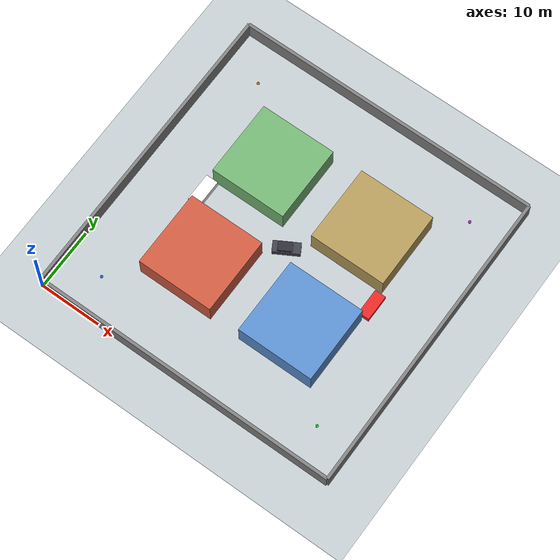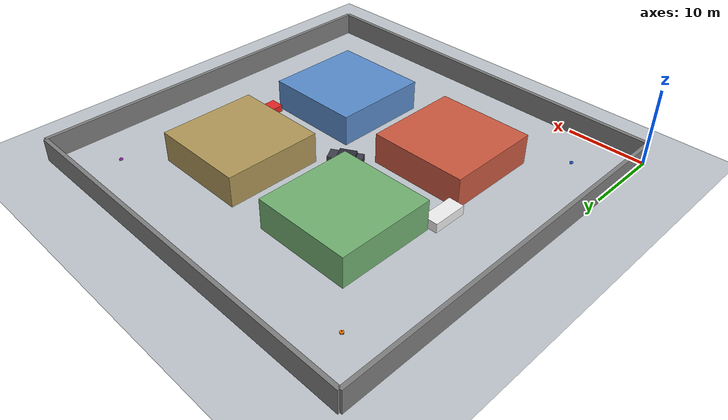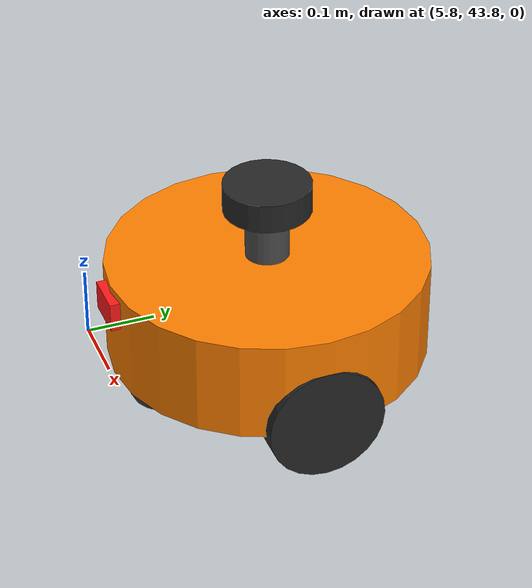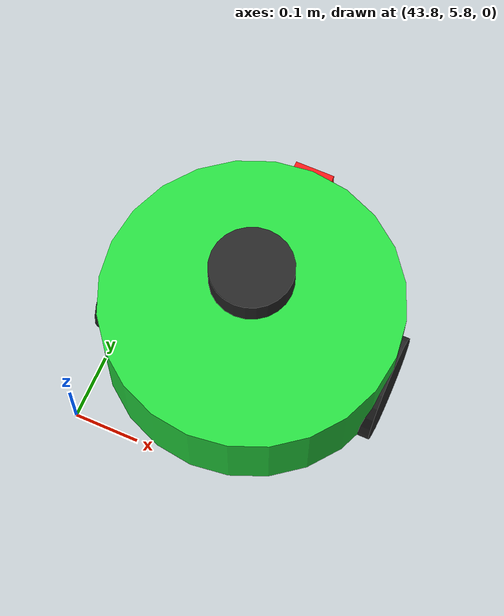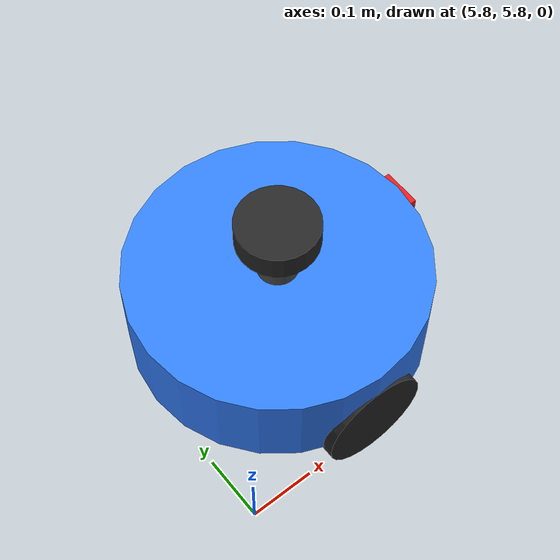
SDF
<?xml version="1.0" ?>
<sdf version="1.8">
  <world name="urban_search_world">
    <!-- Essential Gazebo Fortress Systems -->
    <plugin
      filename="ignition-gazebo-physics-system"
      name="ignition::gazebo::systems::Physics">
    </plugin>
    <plugin
      filename="ignition-gazebo-user-commands-system"
      name="ignition::gazebo::systems::UserCommands">
    </plugin>
    <plugin
      filename="ignition-gazebo-scene-broadcaster-system"
      name="ignition::gazebo::systems::SceneBroadcaster">
    </plugin>
    <plugin
      filename="ignition-gazebo-sensors-system"
      name="ignition::gazebo::systems::Sensors">
      <render_engine>ogre2</render_engine>
    </plugin>

    <!-- Directional Sunlight -->
    <light type="directional" name="sun">
      <cast_shadows>true</cast_shadows>
      <pose>25.0 25.0 50.0 0 0 0</pose>
      <diffuse>0.85 0.85 0.85 1</diffuse>
      <specular>0.2 0.2 0.2 1</specular>
      <attenuation>
        <range>1000</range>
        <constant>0.9</constant>
        <linear>0.01</linear>
        <quadratic>0.001</quadratic>
      </attenuation>
      <direction>-0.4 0.2 -0.9</direction>
    </light>

    <!-- Ground Plane (100m x 100m) -->
    <model name="ground_plane">
      <static>true</static>
      <link name="link">
        <collision name="collision">
          <geometry><plane><normal>0 0 1</normal><size>100 100</size></plane></geometry>
        </collision>
        <visual name="visual">
          <geometry><plane><normal>0 0 1</normal><size>100 100</size></plane></geometry>
          <material>
            <ambient>0.75 0.78 0.8 1</ambient>
            <diffuse>0.75 0.78 0.8 1</diffuse>
          </material>
        </visual>
      </link>
    </model>

    <!-- GUI Camera (Overhead Isometric View of 50m x 50m Area) -->
    <gui fullscreen="0">
      <camera name="user_camera">
        <pose>25.0 -10.0 42.0 0 1.02 1.5708</pose>
        <view_controller>orbit</view_controller>
      </camera>
    </gui>

    <!-- Scene Lighting -->
    <scene>
      <ambient>0.6 0.6 0.6 1.0</ambient>
      <background>0.8 0.85 0.9 1.0</background>
      <shadows>true</shadows>
      <grid>true</grid>
    </scene>

    <!-- Boundary Perimeter Walls (50m x 50m) -->
    <model name="wall_south">
      <static>true</static>
      <pose>25.0 0.0 1.5 0 0 0</pose>
      <link name="link">
        <collision name="collision">
          <geometry><box><size>50.0 0.5 3.0</size></box></geometry>
        </collision>
        <visual name="visual">
          <geometry><box><size>50.0 0.5 3.0</size></box></geometry>
          <material><ambient>0.4 0.4 0.4 1</ambient><diffuse>0.5 0.5 0.5 1</diffuse></material>
        </visual>
      </link>
    </model>

    <model name="wall_north">
      <static>true</static>
      <pose>25.0 50.0 1.5 0 0 0</pose>
      <link name="link">
        <collision name="collision">
          <geometry><box><size>50.0 0.5 3.0</size></box></geometry>
        </collision>
        <visual name="visual">
          <geometry><box><size>50.0 0.5 3.0</size></box></geometry>
          <material><ambient>0.4 0.4 0.4 1</ambient><diffuse>0.5 0.5 0.5 1</diffuse></material>
        </visual>
      </link>
    </model>

    <model name="wall_west">
      <static>true</static>
      <pose>0.0 25.0 1.5 0 0 0</pose>
      <link name="link">
        <collision name="collision">
          <geometry><box><size>0.5 50.0 3.0</size></box></geometry>
        </collision>
        <visual name="visual">
          <geometry><box><size>0.5 50.0 3.0</size></box></geometry>
          <material><ambient>0.4 0.4 0.4 1</ambient><diffuse>0.5 0.5 0.5 1</diffuse></material>
        </visual>
      </link>
    </model>

    <model name="wall_east">
      <static>true</static>
      <pose>50.0 25.0 1.5 0 0 0</pose>
      <link name="link">
        <collision name="collision">
          <geometry><box><size>0.5 50.0 3.0</size></box></geometry>
        </collision>
        <visual name="visual">
          <geometry><box><size>0.5 50.0 3.0</size></box></geometry>
          <material><ambient>0.4 0.4 0.4 1</ambient><diffuse>0.5 0.5 0.5 1</diffuse></material>
        </visual>
      </link>
    </model>

    <!-- 4 Urban City Blocks / Building Obstacles -->
    <!-- Block 1: South-West (10m - 22.5m, 10m - 22.5m) -->
    <model name="building_block_sw">
      <static>true</static>
      <pose>16.25 16.25 2.0 0 0 0</pose>
      <link name="link">
        <collision name="collision">
          <geometry><box><size>12.5 12.5 4.0</size></box></geometry>
        </collision>
        <visual name="visual">
          <geometry><box><size>12.5 12.5 4.0</size></box></geometry>
          <material><ambient>0.7 0.3 0.2 1</ambient><diffuse>0.8 0.35 0.25 1</diffuse></material>
        </visual>
      </link>
    </model>

    <!-- Block 2: South-East (27.5m - 40.0m, 10m - 22.5m) -->
    <model name="building_block_se">
      <static>true</static>
      <pose>33.75 16.25 2.0 0 0 0</pose>
      <link name="link">
        <collision name="collision">
          <geometry><box><size>12.5 12.5 4.0</size></box></geometry>
        </collision>
        <visual name="visual">
          <geometry><box><size>12.5 12.5 4.0</size></box></geometry>
          <material><ambient>0.3 0.5 0.7 1</ambient><diffuse>0.35 0.55 0.8 1</diffuse></material>
        </visual>
      </link>
    </model>

    <!-- Block 3: North-West (10m - 22.5m, 27.5m - 40.0m) -->
    <model name="building_block_nw">
      <static>true</static>
      <pose>16.25 33.75 2.0 0 0 0</pose>
      <link name="link">
        <collision name="collision">
          <geometry><box><size>12.5 12.5 4.0</size></box></geometry>
        </collision>
        <visual name="visual">
          <geometry><box><size>12.5 12.5 4.0</size></box></geometry>
          <material><ambient>0.4 0.6 0.4 1</ambient><diffuse>0.45 0.7 0.45 1</diffuse></material>
        </visual>
      </link>
    </model>

    <!-- Block 4: North-East (27.5m - 40.0m, 27.5m - 40.0m) -->
    <model name="building_block_ne">
      <static>true</static>
      <pose>33.75 33.75 2.0 0 0 0</pose>
      <link name="link">
        <collision name="collision">
          <geometry><box><size>12.5 12.5 4.0</size></box></geometry>
        </collision>
        <visual name="visual">
          <geometry><box><size>12.5 12.5 4.0</size></box></geometry>
          <material><ambient>0.6 0.5 0.3 1</ambient><diffuse>0.7 0.6 0.35 1</diffuse></material>
        </visual>
      </link>
    </model>

    <!-- Target Stolen Vehicle (Dark Gray Sedan, Plate: DXB-88392) at (25.0, 25.0) -->
    <model name="target_stolen_sedan">
      <static>true</static>
      <pose>25.0 25.0 0.45 0 0 0.52</pose>
      <link name="chassis">
        <collision name="collision">
          <geometry><box><size>4.2 1.8 0.9</size></box></geometry>
        </collision>
        <visual name="visual_body">
          <geometry><box><size>4.2 1.8 0.9</size></box></geometry>
          <material><ambient>0.2 0.2 0.25 1</ambient><diffuse>0.25 0.25 0.3 1</diffuse></material>
        </visual>
        <visual name="visual_roof">
          <pose>-0.2 0 0.6 0 0 0</pose>
          <geometry><box><size>2.2 1.5 0.5</size></box></geometry>
          <material><ambient>0.15 0.15 0.18 1</ambient><diffuse>0.18 0.18 0.22 1</diffuse></material>
        </visual>
        <!-- License Plate Marker Front -->
        <visual name="plate_front">
          <pose>2.11 0 0.0 0 0 0</pose>
          <geometry><box><size>0.02 0.52 0.16</size></box></geometry>
          <material><ambient>1.0 1.0 1.0 1</ambient><diffuse>1.0 1.0 1.0 1</diffuse></material>
        </visual>
        <!-- License Plate Marker Rear -->
        <visual name="plate_rear">
          <pose>-2.11 0 0.0 0 0 0</pose>
          <geometry><box><size>0.02 0.52 0.16</size></box></geometry>
          <material><ambient>1.0 0.8 0.0 1</ambient><diffuse>1.0 0.85 0.0 1</diffuse></material>
        </visual>
      </link>
    </model>

    <!-- Civilian Decoy Vehicle 1: White SUV (AD-10294) at (10.0, 25.0) -->
    <model name="civilian_suv_1">
      <static>true</static>
      <pose>10.0 25.0 0.6 0 0 1.57</pose>
      <link name="chassis">
        <collision name="collision">
          <geometry><box><size>4.5 2.0 1.2</size></box></geometry>
        </collision>
        <visual name="visual">
          <geometry><box><size>4.5 2.0 1.2</size></box></geometry>
          <material><ambient>0.9 0.9 0.9 1</ambient><diffuse>0.95 0.95 0.95 1</diffuse></material>
        </visual>
      </link>
    </model>

    <!-- Civilian Decoy Vehicle 2: Red Sedan (SHJ-44910) at (40.0, 25.0) -->
    <model name="civilian_sedan_2">
      <static>true</static>
      <pose>40.0 25.0 0.45 0 0 -1.57</pose>
      <link name="chassis">
        <collision name="collision">
          <geometry><box><size>4.2 1.8 0.9</size></box></geometry>
        </collision>
        <visual name="visual">
          <geometry><box><size>4.2 1.8 0.9</size></box></geometry>
          <material><ambient>0.8 0.1 0.1 1</ambient><diffuse>0.9 0.15 0.15 1</diffuse></material>
        </visual>
      </link>
    </model>

    <!-- 4 SWARMX AUTONOMOUS GROUND VEHICLES (AGVs) WITH DIFF-DRIVE & SENSORS -->

    <!-- ROBOT 1: Blue AGV (Start: 6.0, 6.0, heading: 0 rad) -->
    <model name="robot_1">
      <pose>6.0 6.0 0.08 0 0 0</pose>
      <link name="base_link">
        <inertial>
          <pose>0 0 0.05 0 0 0</pose>
          <mass>4.0</mass>
          <inertia>
            <ixx>0.05</ixx><ixy>0</ixy><ixz>0</ixz>
            <iyy>0.05</iyy><iyz>0</iyz><izz>0.08</izz>
          </inertia>
        </inertial>
        <collision name="collision">
          <pose>0 0 0.06 0 0 0</pose>
          <geometry><cylinder><radius>0.22</radius><length>0.14</length></cylinder></geometry>
        </collision>
        <visual name="chassis_visual">
          <pose>0 0 0.06 0 0 0</pose>
          <geometry><cylinder><radius>0.22</radius><length>0.14</length></cylinder></geometry>
          <material><ambient>0.1 0.4 0.9 1</ambient><diffuse>0.2 0.5 1.0 1</diffuse></material>
        </visual>
        <visual name="mast_visual">
          <pose>0 0 0.16 0 0 0</pose>
          <geometry><cylinder><radius>0.03</radius><length>0.08</length></cylinder></geometry>
          <material><ambient>0.2 0.2 0.2 1</ambient><diffuse>0.3 0.3 0.3 1</diffuse></material>
        </visual>
        <visual name="lidar_visual">
          <pose>0 0 0.22 0 0 0</pose>
          <geometry><cylinder><radius>0.06</radius><length>0.04</length></cylinder></geometry>
          <material><ambient>0.1 0.1 0.1 1</ambient><diffuse>0.15 0.15 0.15 1</diffuse></material>
        </visual>
        <visual name="camera_visual">
          <pose>0.20 0 0.10 0 0 0</pose>
          <geometry><box><size>0.06 0.06 0.04</size></box></geometry>
          <material><ambient>0.9 0.1 0.1 1</ambient><diffuse>1.0 0.1 0.1 1</diffuse></material>
        </visual>
        <sensor name="lidar_1" type="gpu_lidar">
          <pose>0 0 0.22 0 0 0</pose>
          <topic>/robot_1/scan</topic>
          <update_rate>10</update_rate>
          <lidar>
            <scan>
              <horizontal>
                <samples>360</samples>
                <resolution>1</resolution>
                <min_angle>-3.14159</min_angle>
                <max_angle>3.14159</max_angle>
              </horizontal>
            </scan>
            <range>
              <min>0.15</min>
              <max>14.0</max>
              <resolution>0.01</resolution>
            </range>
          </lidar>
          <always_on>1</always_on>
          <visualize>true</visualize>
        </sensor>
        <sensor name="camera_1" type="camera">
          <pose>0.20 0 0.10 0 0 0</pose>
          <topic>/robot_1/camera/image_raw</topic>
          <update_rate>10</update_rate>
          <camera>
            <horizontal_fov>1.5707963</horizontal_fov>
            <image>
              <width>640</width>
              <height>480</height>
              <format>R8G8B8</format>
            </image>
            <clip><near>0.1</near><far>25.0</far></clip>
          </camera>
          <always_on>1</always_on>
          <visualize>true</visualize>
        </sensor>
      </link>

      <link name="left_wheel">
        <pose>0 0.20 0 0 0 0</pose>
        <inertial>
          <mass>0.5</mass>
          <inertia><ixx>0.001</ixx><ixy>0</ixy><ixz>0</ixz><iyy>0.001</iyy><iyz>0</iyz><izz>0.001</izz></inertia>
        </inertial>
        <collision name="collision">
          <pose>0 0 0 1.57079632679 0 0</pose>
          <geometry><cylinder><radius>0.08</radius><length>0.04</length></cylinder></geometry>
          <surface><friction><ode><mu>1.5</mu><mu2>1.5</mu2></ode></friction></surface>
        </collision>
        <visual name="visual">
          <pose>0 0 0 1.57079632679 0 0</pose>
          <geometry><cylinder><radius>0.08</radius><length>0.04</length></cylinder></geometry>
          <material><ambient>0.1 0.1 0.1 1</ambient><diffuse>0.15 0.15 0.15 1</diffuse></material>
        </visual>
      </link>

      <link name="right_wheel">
        <pose>0 -0.20 0 0 0 0</pose>
        <inertial>
          <mass>0.5</mass>
          <inertia><ixx>0.001</ixx><ixy>0</ixy><ixz>0</ixz><iyy>0.001</iyy><iyz>0</iyz><izz>0.001</izz></inertia>
        </inertial>
        <collision name="collision">
          <pose>0 0 0 1.57079632679 0 0</pose>
          <geometry><cylinder><radius>0.08</radius><length>0.04</length></cylinder></geometry>
          <surface><friction><ode><mu>1.5</mu><mu2>1.5</mu2></ode></friction></surface>
        </collision>
        <visual name="visual">
          <pose>0 0 0 1.57079632679 0 0</pose>
          <geometry><cylinder><radius>0.08</radius><length>0.04</length></cylinder></geometry>
          <material><ambient>0.1 0.1 0.1 1</ambient><diffuse>0.15 0.15 0.15 1</diffuse></material>
        </visual>
      </link>

      <link name="front_caster">
        <pose>0.16 0 -0.04 0 0 0</pose>
        <inertial><mass>0.1</mass><inertia><ixx>0.0001</ixx><ixy>0</ixy><ixz>0</ixz><iyy>0.0001</iyy><iyz>0</iyz><izz>0.0001</izz></inertia></inertial>
        <collision name="collision">
          <geometry><sphere><radius>0.04</radius></sphere></geometry>
          <surface><friction><ode><mu>0.001</mu><mu2>0.001</mu2></ode></friction></surface>
        </collision>
        <visual name="visual">
          <geometry><sphere><radius>0.04</radius></sphere></geometry>
          <material><ambient>0.2 0.2 0.2 1</ambient><diffuse>0.2 0.2 0.2 1</diffuse></material>
        </visual>
      </link>

      <link name="rear_caster">
        <pose>-0.16 0 -0.04 0 0 0</pose>
        <inertial><mass>0.1</mass><inertia><ixx>0.0001</ixx><ixy>0</ixy><ixz>0</ixz><iyy>0.0001</iyy><iyz>0</iyz><izz>0.0001</izz></inertia></inertial>
        <collision name="collision">
          <geometry><sphere><radius>0.04</radius></sphere></geometry>
          <surface><friction><ode><mu>0.001</mu><mu2>0.001</mu2></ode></friction></surface>
        </collision>
        <visual name="visual">
          <geometry><sphere><radius>0.04</radius></sphere></geometry>
          <material><ambient>0.2 0.2 0.2 1</ambient><diffuse>0.2 0.2 0.2 1</diffuse></material>
        </visual>
      </link>

      <joint name="left_wheel_joint" type="revolute">
        <parent>base_link</parent>
        <child>left_wheel</child>
        <axis><xyz>0 1 0</xyz><limit><lower>-1.79769e+308</lower><upper>1.79769e+308</upper></limit></axis>
      </joint>

      <joint name="right_wheel_joint" type="revolute">
        <parent>base_link</parent>
        <child>right_wheel</child>
        <axis><xyz>0 1 0</xyz><limit><lower>-1.79769e+308</lower><upper>1.79769e+308</upper></limit></axis>
      </joint>

      <joint name="front_caster_joint" type="ball">
        <parent>base_link</parent>
        <child>front_caster</child>
      </joint>

      <joint name="rear_caster_joint" type="ball">
        <parent>base_link</parent>
        <child>rear_caster</child>
      </joint>

      <plugin
        filename="ignition-gazebo-diff-drive-system"
        name="ignition::gazebo::systems::DiffDrive">
        <left_joint>left_wheel_joint</left_joint>
        <right_joint>right_wheel_joint</right_joint>
        <wheel_separation>0.40</wheel_separation>
        <wheel_radius>0.08</wheel_radius>
        <max_linear_acceleration>2.0</max_linear_acceleration>
        <min_linear_acceleration>-2.0</min_linear_acceleration>
        <max_angular_acceleration>3.0</max_angular_acceleration>
        <min_angular_acceleration>-3.0</min_angular_acceleration>
        <topic>/robot_1/cmd_vel</topic>
        <odom_topic>/robot_1/odom</odom_topic>
        <frame_id>robot_1/odom</frame_id>
        <child_frame_id>robot_1/base_link</child_frame_id>
        <odom_publish_frequency>20</odom_publish_frequency>
      </plugin>
    </model>

    <!-- ROBOT 2: Orange AGV (Start: 6.0, 44.0, heading: -1.57 rad) -->
    <model name="robot_2">
      <pose>6.0 44.0 0.08 0 0 -1.5708</pose>
      <link name="base_link">
        <inertial>
          <pose>0 0 0.05 0 0 0</pose>
          <mass>4.0</mass>
          <inertia>
            <ixx>0.05</ixx><ixy>0</ixy><ixz>0</ixz>
            <iyy>0.05</iyy><iyz>0</iyz><izz>0.08</izz>
          </inertia>
        </inertial>
        <collision name="collision">
          <pose>0 0 0.06 0 0 0</pose>
          <geometry><cylinder><radius>0.22</radius><length>0.14</length></cylinder></geometry>
        </collision>
        <visual name="chassis_visual">
          <pose>0 0 0.06 0 0 0</pose>
          <geometry><cylinder><radius>0.22</radius><length>0.14</length></cylinder></geometry>
          <material><ambient>0.9 0.4 0.0 1</ambient><diffuse>1.0 0.5 0.0 1</diffuse></material>
        </visual>
        <visual name="mast_visual">
          <pose>0 0 0.16 0 0 0</pose>
          <geometry><cylinder><radius>0.03</radius><length>0.08</length></cylinder></geometry>
          <material><ambient>0.2 0.2 0.2 1</ambient><diffuse>0.3 0.3 0.3 1</diffuse></material>
        </visual>
        <visual name="lidar_visual">
          <pose>0 0 0.22 0 0 0</pose>
          <geometry><cylinder><radius>0.06</radius><length>0.04</length></cylinder></geometry>
          <material><ambient>0.1 0.1 0.1 1</ambient><diffuse>0.15 0.15 0.15 1</diffuse></material>
        </visual>
        <visual name="camera_visual">
          <pose>0.20 0 0.10 0 0 0</pose>
          <geometry><box><size>0.06 0.06 0.04</size></box></geometry>
          <material><ambient>0.9 0.1 0.1 1</ambient><diffuse>1.0 0.1 0.1 1</diffuse></material>
        </visual>
        <sensor name="lidar_2" type="gpu_lidar">
          <pose>0 0 0.22 0 0 0</pose>
          <topic>/robot_2/scan</topic>
          <update_rate>10</update_rate>
          <lidar>
            <scan>
              <horizontal>
                <samples>360</samples>
                <resolution>1</resolution>
                <min_angle>-3.14159</min_angle>
                <max_angle>3.14159</max_angle>
              </horizontal>
            </scan>
            <range>
              <min>0.15</min>
              <max>14.0</max>
              <resolution>0.01</resolution>
            </range>
          </lidar>
          <always_on>1</always_on>
          <visualize>true</visualize>
        </sensor>
        <sensor name="camera_2" type="camera">
          <pose>0.20 0 0.10 0 0 0</pose>
          <topic>/robot_2/camera/image_raw</topic>
          <update_rate>10</update_rate>
          <camera>
            <horizontal_fov>1.5707963</horizontal_fov>
            <image>
              <width>640</width>
              <height>480</height>
              <format>R8G8B8</format>
            </image>
            <clip><near>0.1</near><far>25.0</far></clip>
          </camera>
          <always_on>1</always_on>
          <visualize>true</visualize>
        </sensor>
      </link>

      <link name="left_wheel">
        <pose>0 0.20 0 0 0 0</pose>
        <inertial>
          <mass>0.5</mass>
          <inertia><ixx>0.001</ixx><ixy>0</ixy><ixz>0</ixz><iyy>0.001</iyy><iyz>0</iyz><izz>0.001</izz></inertia>
        </inertial>
        <collision name="collision">
          <pose>0 0 0 1.57079632679 0 0</pose>
          <geometry><cylinder><radius>0.08</radius><length>0.04</length></cylinder></geometry>
          <surface><friction><ode><mu>1.5</mu><mu2>1.5</mu2></ode></friction></surface>
        </collision>
        <visual name="visual">
          <pose>0 0 0 1.57079632679 0 0</pose>
          <geometry><cylinder><radius>0.08</radius><length>0.04</length></cylinder></geometry>
          <material><ambient>0.1 0.1 0.1 1</ambient><diffuse>0.15 0.15 0.15 1</diffuse></material>
        </visual>
      </link>

      <link name="right_wheel">
        <pose>0 -0.20 0 0 0 0</pose>
        <inertial>
          <mass>0.5</mass>
          <inertia><ixx>0.001</ixx><ixy>0</ixy><ixz>0</ixz><iyy>0.001</iyy><iyz>0</iyz><izz>0.001</izz></inertia>
        </inertial>
        <collision name="collision">
          <pose>0 0 0 1.57079632679 0 0</pose>
          <geometry><cylinder><radius>0.08</radius><length>0.04</length></cylinder></geometry>
          <surface><friction><ode><mu>1.5</mu><mu2>1.5</mu2></ode></friction></surface>
        </collision>
        <visual name="visual">
          <pose>0 0 0 1.57079632679 0 0</pose>
          <geometry><cylinder><radius>0.08</radius><length>0.04</length></cylinder></geometry>
          <material><ambient>0.1 0.1 0.1 1</ambient><diffuse>0.15 0.15 0.15 1</diffuse></material>
        </visual>
      </link>

      <link name="front_caster">
        <pose>0.16 0 -0.04 0 0 0</pose>
        <inertial><mass>0.1</mass><inertia><ixx>0.0001</ixx><ixy>0</ixy><ixz>0</ixz><iyy>0.0001</iyy><iyz>0</iyz><izz>0.0001</izz></inertia></inertial>
        <collision name="collision">
          <geometry><sphere><radius>0.04</radius></sphere></geometry>
          <surface><friction><ode><mu>0.001</mu><mu2>0.001</mu2></ode></friction></surface>
        </collision>
        <visual name="visual">
          <geometry><sphere><radius>0.04</radius></sphere></geometry>
          <material><ambient>0.2 0.2 0.2 1</ambient><diffuse>0.2 0.2 0.2 1</diffuse></material>
        </visual>
      </link>

      <link name="rear_caster">
        <pose>-0.16 0 -0.04 0 0 0</pose>
        <inertial><mass>0.1</mass><inertia><ixx>0.0001</ixx><ixy>0</ixy><ixz>0</ixz><iyy>0.0001</iyy><iyz>0</iyz><izz>0.0001</izz></inertia></inertial>
        <collision name="collision">
          <geometry><sphere><radius>0.04</radius></sphere></geometry>
          <surface><friction><ode><mu>0.001</mu><mu2>0.001</mu2></ode></friction></surface>
        </collision>
        <visual name="visual">
          <geometry><sphere><radius>0.04</radius></sphere></geometry>
          <material><ambient>0.2 0.2 0.2 1</ambient><diffuse>0.2 0.2 0.2 1</diffuse></material>
        </visual>
      </link>

      <joint name="left_wheel_joint" type="revolute">
        <parent>base_link</parent>
        <child>left_wheel</child>
        <axis><xyz>0 1 0</xyz><limit><lower>-1.79769e+308</lower><upper>1.79769e+308</upper></limit></axis>
      </joint>

      <joint name="right_wheel_joint" type="revolute">
        <parent>base_link</parent>
        <child>right_wheel</child>
        <axis><xyz>0 1 0</xyz><limit><lower>-1.79769e+308</lower><upper>1.79769e+308</upper></limit></axis>
      </joint>

      <joint name="front_caster_joint" type="ball">
        <parent>base_link</parent>
        <child>front_caster</child>
      </joint>

      <joint name="rear_caster_joint" type="ball">
        <parent>base_link</parent>
        <child>rear_caster</child>
      </joint>

      <plugin
        filename="ignition-gazebo-diff-drive-system"
        name="ignition::gazebo::systems::DiffDrive">
        <left_joint>left_wheel_joint</left_joint>
        <right_joint>right_wheel_joint</right_joint>
        <wheel_separation>0.40</wheel_separation>
        <wheel_radius>0.08</wheel_radius>
        <max_linear_acceleration>2.0</max_linear_acceleration>
        <min_linear_acceleration>-2.0</min_linear_acceleration>
        <max_angular_acceleration>3.0</max_angular_acceleration>
        <min_angular_acceleration>-3.0</min_angular_acceleration>
        <topic>/robot_2/cmd_vel</topic>
        <odom_topic>/robot_2/odom</odom_topic>
        <frame_id>robot_2/odom</frame_id>
        <child_frame_id>robot_2/base_link</child_frame_id>
        <odom_publish_frequency>20</odom_publish_frequency>
      </plugin>
    </model>

    <!-- ROBOT 3: Green AGV (Start: 44.0, 6.0, heading: 1.57 rad) -->
    <model name="robot_3">
      <pose>44.0 6.0 0.08 0 0 1.5708</pose>
      <link name="base_link">
        <inertial>
          <pose>0 0 0.05 0 0 0</pose>
          <mass>4.0</mass>
          <inertia>
            <ixx>0.05</ixx><ixy>0</ixy><ixz>0</ixz>
            <iyy>0.05</iyy><iyz>0</iyz><izz>0.08</izz>
          </inertia>
        </inertial>
        <collision name="collision">
          <pose>0 0 0.06 0 0 0</pose>
          <geometry><cylinder><radius>0.22</radius><length>0.14</length></cylinder></geometry>
        </collision>
        <visual name="chassis_visual">
          <pose>0 0 0.06 0 0 0</pose>
          <geometry><cylinder><radius>0.22</radius><length>0.14</length></cylinder></geometry>
          <material><ambient>0.1 0.7 0.2 1</ambient><diffuse>0.15 0.85 0.25 1</diffuse></material>
        </visual>
        <visual name="mast_visual">
          <pose>0 0 0.16 0 0 0</pose>
          <geometry><cylinder><radius>0.03</radius><length>0.08</length></cylinder></geometry>
          <material><ambient>0.2 0.2 0.2 1</ambient><diffuse>0.3 0.3 0.3 1</diffuse></material>
        </visual>
        <visual name="lidar_visual">
          <pose>0 0 0.22 0 0 0</pose>
          <geometry><cylinder><radius>0.06</radius><length>0.04</length></cylinder></geometry>
          <material><ambient>0.1 0.1 0.1 1</ambient><diffuse>0.15 0.15 0.15 1</diffuse></material>
        </visual>
        <visual name="camera_visual">
          <pose>0.20 0 0.10 0 0 0</pose>
          <geometry><box><size>0.06 0.06 0.04</size></box></geometry>
          <material><ambient>0.9 0.1 0.1 1</ambient><diffuse>1.0 0.1 0.1 1</diffuse></material>
        </visual>
        <sensor name="lidar_3" type="gpu_lidar">
          <pose>0 0 0.22 0 0 0</pose>
          <topic>/robot_3/scan</topic>
          <update_rate>10</update_rate>
          <lidar>
            <scan>
              <horizontal>
                <samples>360</samples>
                <resolution>1</resolution>
                <min_angle>-3.14159</min_angle>
                <max_angle>3.14159</max_angle>
              </horizontal>
            </scan>
            <range>
              <min>0.15</min>
              <max>14.0</max>
              <resolution>0.01</resolution>
            </range>
          </lidar>
          <always_on>1</always_on>
          <visualize>true</visualize>
        </sensor>
        <sensor name="camera_3" type="camera">
          <pose>0.20 0 0.10 0 0 0</pose>
          <topic>/robot_3/camera/image_raw</topic>
          <update_rate>10</update_rate>
          <camera>
            <horizontal_fov>1.5707963</horizontal_fov>
            <image>
              <width>640</width>
              <height>480</height>
              <format>R8G8B8</format>
            </image>
            <clip><near>0.1</near><far>25.0</far></clip>
          </camera>
          <always_on>1</always_on>
          <visualize>true</visualize>
        </sensor>
      </link>

      <link name="left_wheel">
        <pose>0 0.20 0 0 0 0</pose>
        <inertial>
          <mass>0.5</mass>
          <inertia><ixx>0.001</ixx><ixy>0</ixy><ixz>0</ixz><iyy>0.001</iyy><iyz>0</iyz><izz>0.001</izz></inertia>
        </inertial>
        <collision name="collision">
          <pose>0 0 0 1.57079632679 0 0</pose>
          <geometry><cylinder><radius>0.08</radius><length>0.04</length></cylinder></geometry>
          <surface><friction><ode><mu>1.5</mu><mu2>1.5</mu2></ode></friction></surface>
        </collision>
        <visual name="visual">
          <pose>0 0 0 1.57079632679 0 0</pose>
          <geometry><cylinder><radius>0.08</radius><length>0.04</length></cylinder></geometry>
          <material><ambient>0.1 0.1 0.1 1</ambient><diffuse>0.15 0.15 0.15 1</diffuse></material>
        </visual>
      </link>

      <link name="right_wheel">
        <pose>0 -0.20 0 0 0 0</pose>
        <inertial>
          <mass>0.5</mass>
          <inertia><ixx>0.001</ixx><ixy>0</ixy><ixz>0</ixz><iyy>0.001</iyy><iyz>0</iyz><izz>0.001</izz></inertia>
        </inertial>
        <collision name="collision">
          <pose>0 0 0 1.57079632679 0 0</pose>
          <geometry><cylinder><radius>0.08</radius><length>0.04</length></cylinder></geometry>
          <surface><friction><ode><mu>1.5</mu><mu2>1.5</mu2></ode></friction></surface>
        </collision>
        <visual name="visual">
          <pose>0 0 0 1.57079632679 0 0</pose>
          <geometry><cylinder><radius>0.08</radius><length>0.04</length></cylinder></geometry>
          <material><ambient>0.1 0.1 0.1 1</ambient><diffuse>0.15 0.15 0.15 1</diffuse></material>
        </visual>
      </link>

      <link name="front_caster">
        <pose>0.16 0 -0.04 0 0 0</pose>
        <inertial><mass>0.1</mass><inertia><ixx>0.0001</ixx><ixy>0</ixy><ixz>0</ixz><iyy>0.0001</iyy><iyz>0</iyz><izz>0.0001</izz></inertia></inertial>
        <collision name="collision">
          <geometry><sphere><radius>0.04</radius></sphere></geometry>
          <surface><friction><ode><mu>0.001</mu><mu2>0.001</mu2></ode></friction></surface>
        </collision>
        <visual name="visual">
          <geometry><sphere><radius>0.04</radius></sphere></geometry>
          <material><ambient>0.2 0.2 0.2 1</ambient><diffuse>0.2 0.2 0.2 1</diffuse></material>
        </visual>
      </link>

      <link name="rear_caster">
        <pose>-0.16 0 -0.04 0 0 0</pose>
        <inertial><mass>0.1</mass><inertia><ixx>0.0001</ixx><ixy>0</ixy><ixz>0</ixz><iyy>0.0001</iyy><iyz>0</iyz><izz>0.0001</izz></inertia></inertial>
        <collision name="collision">
          <geometry><sphere><radius>0.04</radius></sphere></geometry>
          <surface><friction><ode><mu>0.001</mu><mu2>0.001</mu2></ode></friction></surface>
        </collision>
        <visual name="visual">
          <geometry><sphere><radius>0.04</radius></sphere></geometry>
          <material><ambient>0.2 0.2 0.2 1</ambient><diffuse>0.2 0.2 0.2 1</diffuse></material>
        </visual>
      </link>

      <joint name="left_wheel_joint" type="revolute">
        <parent>base_link</parent>
        <child>left_wheel</child>
        <axis><xyz>0 1 0</xyz><limit><lower>-1.79769e+308</lower><upper>1.79769e+308</upper></limit></axis>
      </joint>

      <joint name="right_wheel_joint" type="revolute">
        <parent>base_link</parent>
        <child>right_wheel</child>
        <axis><xyz>0 1 0</xyz><limit><lower>-1.79769e+308</lower><upper>1.79769e+308</upper></limit></axis>
      </joint>

      <joint name="front_caster_joint" type="ball">
        <parent>base_link</parent>
        <child>front_caster</child>
      </joint>

      <joint name="rear_caster_joint" type="ball">
        <parent>base_link</parent>
        <child>rear_caster</child>
      </joint>

      <plugin
        filename="ignition-gazebo-diff-drive-system"
        name="ignition::gazebo::systems::DiffDrive">
        <left_joint>left_wheel_joint</left_joint>
        <right_joint>right_wheel_joint</right_joint>
        <wheel_separation>0.40</wheel_separation>
        <wheel_radius>0.08</wheel_radius>
        <max_linear_acceleration>2.0</max_linear_acceleration>
        <min_linear_acceleration>-2.0</min_linear_acceleration>
        <max_angular_acceleration>3.0</max_angular_acceleration>
        <min_angular_acceleration>-3.0</min_angular_acceleration>
        <topic>/robot_3/cmd_vel</topic>
        <odom_topic>/robot_3/odom</odom_topic>
        <frame_id>robot_3/odom</frame_id>
        <child_frame_id>robot_3/base_link</child_frame_id>
        <odom_publish_frequency>20</odom_publish_frequency>
      </plugin>
    </model>

    <!-- ROBOT 4: Purple AGV (Start: 44.0, 44.0, heading: 3.14 rad) -->
    <model name="robot_4">
      <pose>44.0 44.0 0.08 0 0 3.14159</pose>
      <link name="base_link">
        <inertial>
          <pose>0 0 0.05 0 0 0</pose>
          <mass>4.0</mass>
          <inertia>
            <ixx>0.05</ixx><ixy>0</ixy><ixz>0</ixz>
            <iyy>0.05</iyy><iyz>0</iyz><izz>0.08</izz>
          </inertia>
        </inertial>
        <collision name="collision">
          <pose>0 0 0.06 0 0 0</pose>
          <geometry><cylinder><radius>0.22</radius><length>0.14</length></cylinder></geometry>
        </collision>
        <visual name="chassis_visual">
          <pose>0 0 0.06 0 0 0</pose>
          <geometry><cylinder><radius>0.22</radius><length>0.14</length></cylinder></geometry>
          <material><ambient>0.6 0.1 0.7 1</ambient><diffuse>0.7 0.2 0.8 1</diffuse></material>
        </visual>
        <visual name="mast_visual">
          <pose>0 0 0.16 0 0 0</pose>
          <geometry><cylinder><radius>0.03</radius><length>0.08</length></cylinder></geometry>
          <material><ambient>0.2 0.2 0.2 1</ambient><diffuse>0.3 0.3 0.3 1</diffuse></material>
        </visual>
        <visual name="lidar_visual">
          <pose>0 0 0.22 0 0 0</pose>
          <geometry><cylinder><radius>0.06</radius><length>0.04</length></cylinder></geometry>
          <material><ambient>0.1 0.1 0.1 1</ambient><diffuse>0.15 0.15 0.15 1</diffuse></material>
        </visual>
        <visual name="camera_visual">
          <pose>0.20 0 0.10 0 0 0</pose>
          <geometry><box><size>0.06 0.06 0.04</size></box></geometry>
          <material><ambient>0.9 0.1 0.1 1</ambient><diffuse>1.0 0.1 0.1 1</diffuse></material>
        </visual>
        <sensor name="lidar_4" type="gpu_lidar">
          <pose>0 0 0.22 0 0 0</pose>
          <topic>/robot_4/scan</topic>
          <update_rate>10</update_rate>
          <lidar>
            <scan>
              <horizontal>
                <samples>360</samples>
                <resolution>1</resolution>
                <min_angle>-3.14159</min_angle>
                <max_angle>3.14159</max_angle>
              </horizontal>
            </scan>
            <range>
              <min>0.15</min>
              <max>14.0</max>
              <resolution>0.01</resolution>
            </range>
          </lidar>
          <always_on>1</always_on>
          <visualize>true</visualize>
        </sensor>
        <sensor name="camera_4" type="camera">
          <pose>0.20 0 0.10 0 0 0</pose>
          <topic>/robot_4/camera/image_raw</topic>
          <update_rate>10</update_rate>
          <camera>
            <horizontal_fov>1.5707963</horizontal_fov>
            <image>
              <width>640</width>
              <height>480</height>
              <format>R8G8B8</format>
            </image>
            <clip><near>0.1</near><far>25.0</far></clip>
          </camera>
          <always_on>1</always_on>
          <visualize>true</visualize>
        </sensor>
      </link>

      <link name="left_wheel">
        <pose>0 0.20 0 0 0 0</pose>
        <inertial>
          <mass>0.5</mass>
          <inertia><ixx>0.001</ixx><ixy>0</ixy><ixz>0</ixz><iyy>0.001</iyy><iyz>0</iyz><izz>0.001</izz></inertia>
        </inertial>
        <collision name="collision">
          <pose>0 0 0 1.57079632679 0 0</pose>
          <geometry><cylinder><radius>0.08</radius><length>0.04</length></cylinder></geometry>
          <surface><friction><ode><mu>1.5</mu><mu2>1.5</mu2></ode></friction></surface>
        </collision>
        <visual name="visual">
          <pose>0 0 0 1.57079632679 0 0</pose>
          <geometry><cylinder><radius>0.08</radius><length>0.04</length></cylinder></geometry>
          <material><ambient>0.1 0.1 0.1 1</ambient><diffuse>0.15 0.15 0.15 1</diffuse></material>
        </visual>
      </link>

      <link name="right_wheel">
        <pose>0 -0.20 0 0 0 0</pose>
        <inertial>
          <mass>0.5</mass>
          <inertia><ixx>0.001</ixx><ixy>0</ixy><ixz>0</ixz><iyy>0.001</iyy><iyz>0</iyz><izz>0.001</izz></inertia>
        </inertial>
        <collision name="collision">
          <pose>0 0 0 1.57079632679 0 0</pose>
          <geometry><cylinder><radius>0.08</radius><length>0.04</length></cylinder></geometry>
          <surface><friction><ode><mu>1.5</mu><mu2>1.5</mu2></ode></friction></surface>
        </collision>
        <visual name="visual">
          <pose>0 0 0 1.57079632679 0 0</pose>
          <geometry><cylinder><radius>0.08</radius><length>0.04</length></cylinder></geometry>
          <material><ambient>0.1 0.1 0.1 1</ambient><diffuse>0.15 0.15 0.15 1</diffuse></material>
        </visual>
      </link>

      <link name="front_caster">
        <pose>0.16 0 -0.04 0 0 0</pose>
        <inertial><mass>0.1</mass><inertia><ixx>0.0001</ixx><ixy>0</ixy><ixz>0</ixz><iyy>0.0001</iyy><iyz>0</iyz><izz>0.0001</izz></inertia></inertial>
        <collision name="collision">
          <geometry><sphere><radius>0.04</radius></sphere></geometry>
          <surface><friction><ode><mu>0.001</mu><mu2>0.001</mu2></ode></friction></surface>
        </collision>
        <visual name="visual">
          <geometry><sphere><radius>0.04</radius></sphere></geometry>
          <material><ambient>0.2 0.2 0.2 1</ambient><diffuse>0.2 0.2 0.2 1</diffuse></material>
        </visual>
      </link>

      <link name="rear_caster">
        <pose>-0.16 0 -0.04 0 0 0</pose>
        <inertial><mass>0.1</mass><inertia><ixx>0.0001</ixx><ixy>0</ixy><ixz>0</ixz><iyy>0.0001</iyy><iyz>0</iyz><izz>0.0001</izz></inertia></inertial>
        <collision name="collision">
          <geometry><sphere><radius>0.04</radius></sphere></geometry>
          <surface><friction><ode><mu>0.001</mu><mu2>0.001</mu2></ode></friction></surface>
        </collision>
        <visual name="visual">
          <geometry><sphere><radius>0.04</radius></sphere></geometry>
          <material><ambient>0.2 0.2 0.2 1</ambient><diffuse>0.2 0.2 0.2 1</diffuse></material>
        </visual>
      </link>

      <joint name="left_wheel_joint" type="revolute">
        <parent>base_link</parent>
        <child>left_wheel</child>
        <axis><xyz>0 1 0</xyz><limit><lower>-1.79769e+308</lower><upper>1.79769e+308</upper></limit></axis>
      </joint>

      <joint name="right_wheel_joint" type="revolute">
        <parent>base_link</parent>
        <child>right_wheel</child>
        <axis><xyz>0 1 0</xyz><limit><lower>-1.79769e+308</lower><upper>1.79769e+308</upper></limit></axis>
      </joint>

      <joint name="front_caster_joint" type="ball">
        <parent>base_link</parent>
        <child>front_caster</child>
      </joint>

      <joint name="rear_caster_joint" type="ball">
        <parent>base_link</parent>
        <child>rear_caster</child>
      </joint>

      <plugin
        filename="ignition-gazebo-diff-drive-system"
        name="ignition::gazebo::systems::DiffDrive">
        <left_joint>left_wheel_joint</left_joint>
        <right_joint>right_wheel_joint</right_joint>
        <wheel_separation>0.40</wheel_separation>
        <wheel_radius>0.08</wheel_radius>
        <max_linear_acceleration>2.0</max_linear_acceleration>
        <min_linear_acceleration>-2.0</min_linear_acceleration>
        <max_angular_acceleration>3.0</max_angular_acceleration>
        <min_angular_acceleration>-3.0</min_angular_acceleration>
        <topic>/robot_4/cmd_vel</topic>
        <odom_topic>/robot_4/odom</odom_topic>
        <frame_id>robot_4/odom</frame_id>
        <child_frame_id>robot_4/base_link</child_frame_id>
        <odom_publish_frequency>20</odom_publish_frequency>
      </plugin>
    </model>

  </world>
</sdf>
